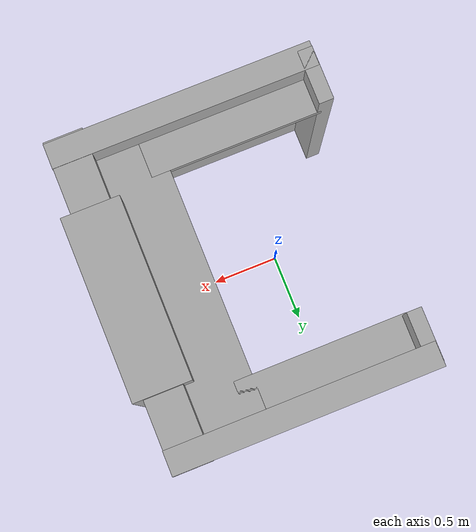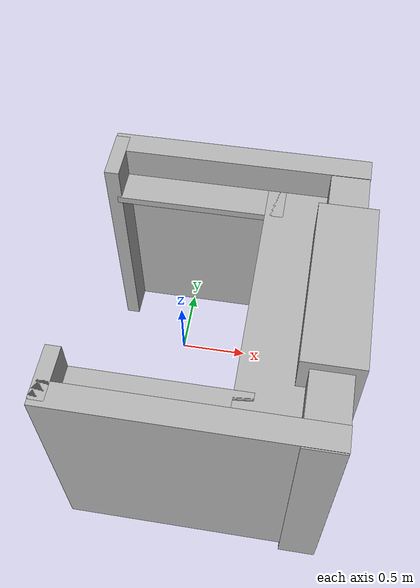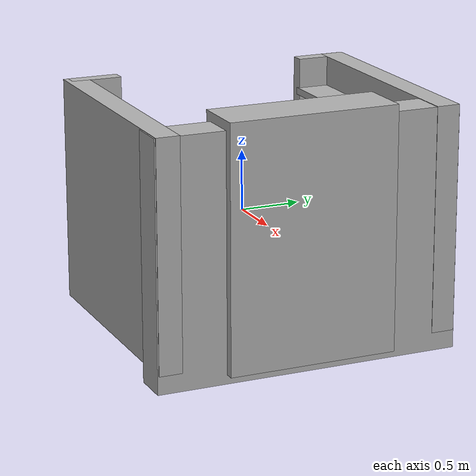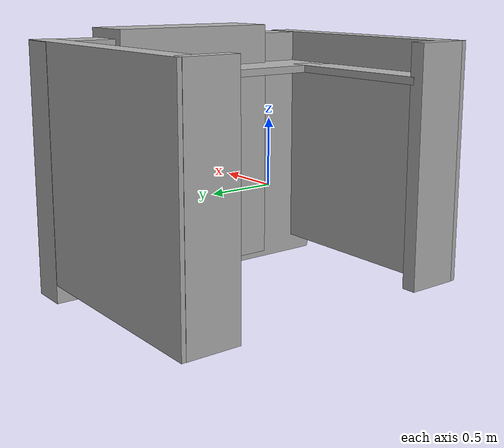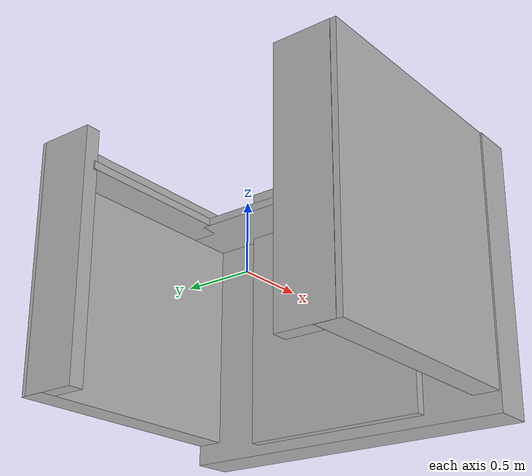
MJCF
<mujoco>
<worldbody>
<body name="Cube.010" pos="0.0 -0.9657063484191895 0.7759256362915039" quat="1.0 0.0 0.0 0.0">
<geom type="box" size="0.6686628460884094 0.16808845102787018 0.02925015799701214" rgba="0.7 0.7 0.7 1"/>
</body>
<body name="Cube.009" pos="0.0 0.9718950986862183 0.7759256362915039" quat="1.0 0.0 0.0 0.0">
<geom type="box" size="0.6686628460884094 0.16808845102787018 0.02925015799701214" rgba="0.7 0.7 0.7 1"/>
</body>
<body name="Cube.008" pos="0.8800378441810608 0.0 0.7759256362915039" quat="1.0 0.0 0.0 0.0">
<geom type="box" size="0.35581859946250916 1.1049433946609497 0.02925015799701214" rgba="0.7 0.7 0.7 1"/>
</body>
<body name="Cube.007" pos="0.2787998616695404 -1.161313533782959 0.12634125351905823" quat="1.0 0.0 0.0 0.0">
<geom type="box" size="1.0263447761535645 0.0961940661072731 0.9277788400650024" rgba="0.7 0.7 0.7 1"/>
</body>
<body name="Cube.006" pos="0.2787998616695404 1.1696393489837646 0.12634125351905823" quat="1.0 0.0 0.0 0.0">
<geom type="box" size="1.0263447761535645 0.0961940661072731 0.9277788400650024" rgba="0.7 0.7 0.7 1"/>
</body>
<body name="Cube.005" pos="-0.692974328994751 -1.0063618421554565 0.12634125351905823" quat="1.0 0.0 0.0 0.0">
<geom type="box" size="0.0570133775472641 0.2081940472126007 0.9277788996696472" rgba="0.7 0.7 0.7 1"/>
</body>
<body name="Cube.004" pos="-0.692974328994751 1.023903250694275 0.12634125351905823" quat="1.0 0.0 0.0 0.0">
<geom type="box" size="0.0570133775472641 0.2081940472126007 0.9277788996696472" rgba="0.7 0.7 0.7 1"/>
</body>
<body name="Cube.003" pos="1.1517261266708374 0.0 0.05028488487005234" quat="1.0 0.0 0.0 0.0">
<geom type="box" size="0.15002338588237762 1.2686704397201538 1.0" rgba="0.7 0.7 0.7 1"/>
</body>
<body name="Cube.002" pos="1.1517261266708374 0.0 0.12634125351905823" quat="1.0 0.0 0.0 0.0">
<geom type="box" size="0.22393140196800232 0.6987792253494263 1.0" rgba="0.7 0.7 0.7 1"/>
</body>
</worldbody>
</mujoco>
